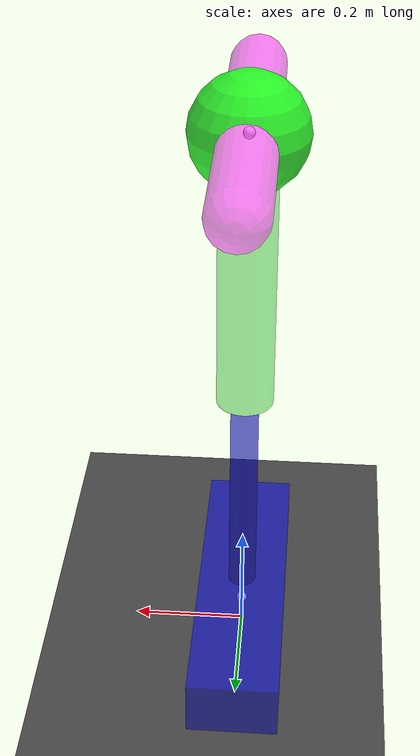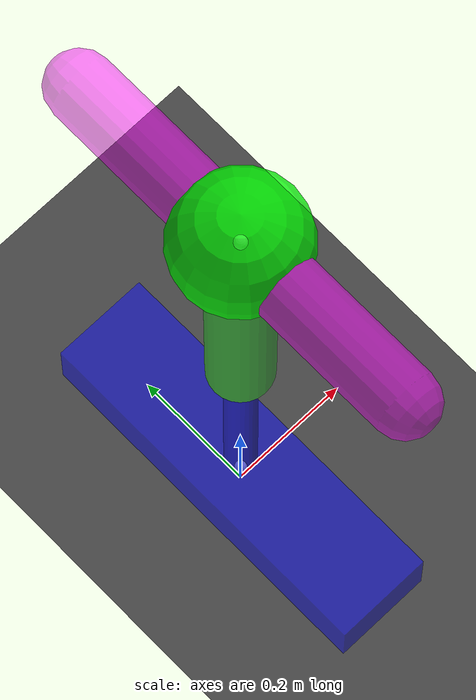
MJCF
<mujoco model="pogo_stick">

     <option integrator = "RK4" timestep = "0.003"
            jacobian = "dense" cone = "elliptic" impratio = "1"
            solver = "Newton">
    </option>

    <statistic meansize="0.25"/>

    <asset>
        <texture type="skybox" builtin="gradient" rgb1="0.6 0.6 0.6" rgb2="0 0 0" width="512" height="512"/>
        <texture name="texplane" type="2d" builtin="checker" rgb1=".25 .25 .25" rgb2=".3 .3 .3" width="512" height="512" mark="cross" markrgb=".8 .8 .8"/>
        <material name="matplane" reflectance="0.3" texture="texplane" texrepeat="1 1" texuniform="true"/>
    </asset>

    <default>
        <geom density="50" solref="0.02 1" solimp="0 0.95 0.03"/>
        <site type="sphere" pos="0 0 0" size="0.01" rgba="1 1 1 1"/>
    </default>

    <worldbody>
        <geom name="floor" pos="0 0 0" size="0 0 1" type="plane" material="matplane"/>
        <light directional="true" diffuse=".8 .8 .8" specular=".2 .2 .2" pos="5 0 0" dir="-1 0 0"/>
        <light directional="true" diffuse=".8 .8 .8" specular=".2 .2 .2" pos="0 0 5" dir="0 0 -1"/>

        <body name="bob" pos="0 0 1.">
            <freejoint/>
            <geom pos="0 0 0" type="sphere" size="0.1" density="1000" rgba="0 1 0 0.8"/>
            <geom type="capsule" size="0.05" fromto="0 -0.3 0 0 0.3 0" density="1" rgba="1 0 1 0.5"/>
            <geom type="cylinder" fromto="0 0 0 0 0 -0.5" size="0.05" rgba="0 1 0 0.4"/>
            <site name="p"/>

            <body name="leg1" pos="0 0 0">
                <joint name="knee1_prismatic" type="slide" axis="0 0 -1" />
                <geom name="foot1_geom" type="box" pos="0 0 -0.95" size="0.08 0.3 0.05"  rgba="0 0 1 0.5"/>
                <geom type="cylinder" size="0.025" fromto="0 0 -0.35 0 0 -0.95" rgba="0 0 1 0.6"/>
                <site name="f1" pos="0 0 -0.95"/>
            </body>
        </body>
    </worldbody>

    <sensor>
        <contact name="base_contact_sensor" body1="world" body2="leg1" num="1" data="found force pos" reduce="netforce"/>
    </sensor>

    <actuator>
        <motor name="lin_act" joint="knee1_prismatic"/>
    </actuator>

    <keyframe>
        <key name="home" qpos="0 0 1 1 0 0 0 0"/>
    </keyframe>

</mujoco>
